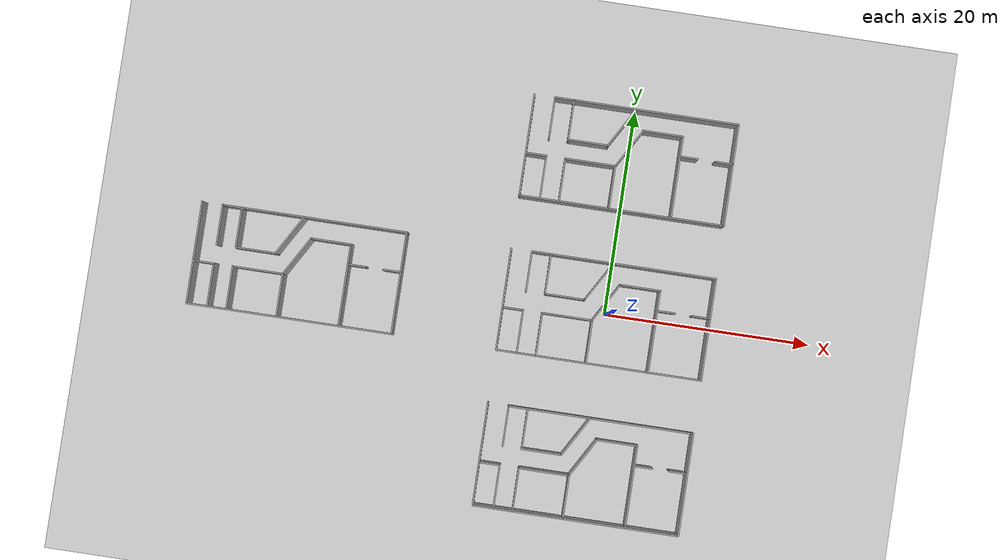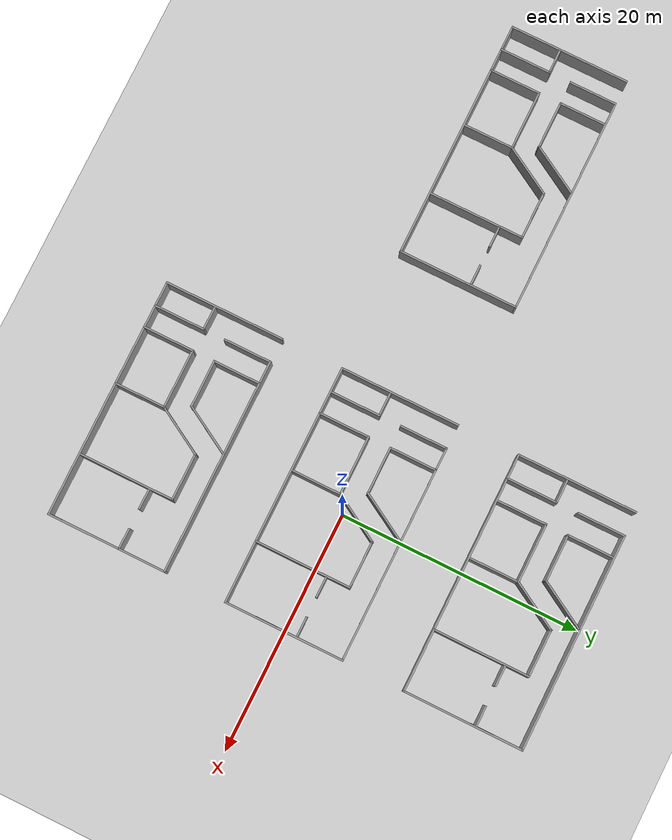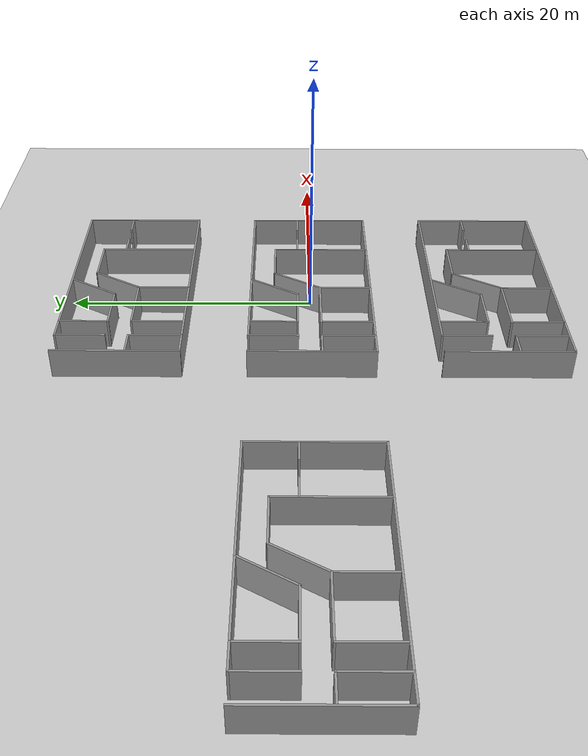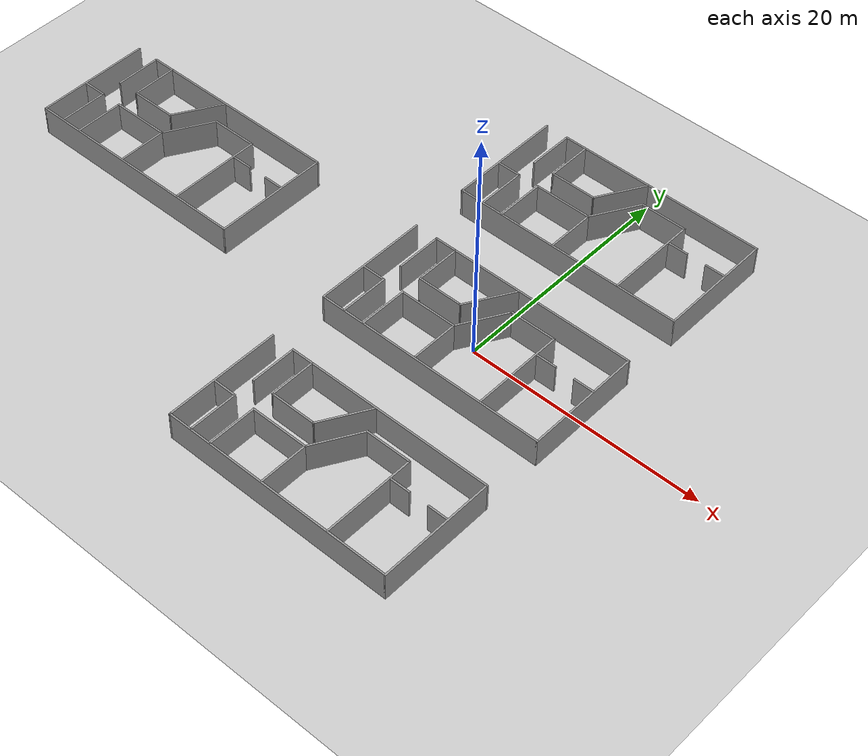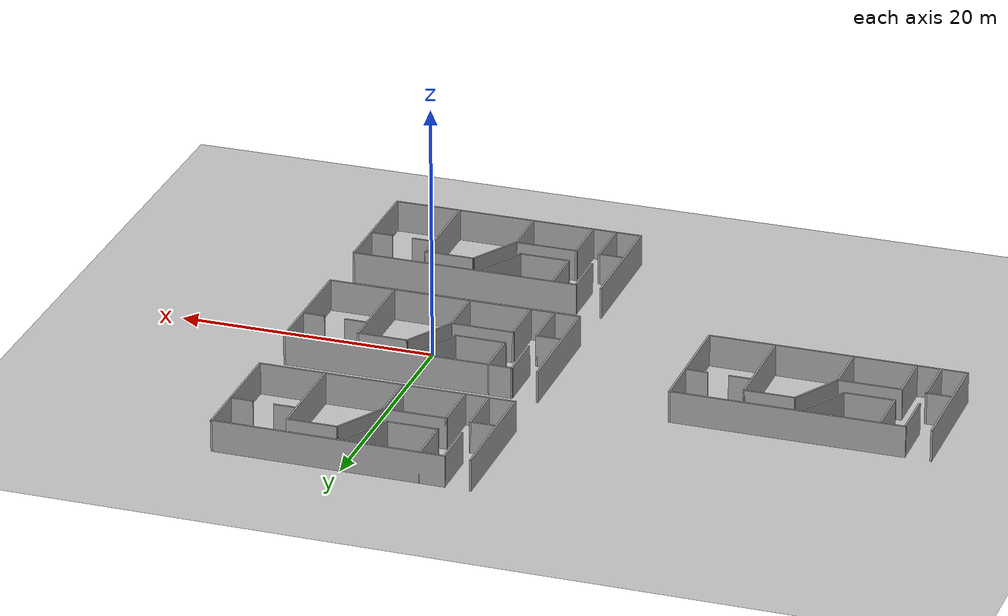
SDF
<sdf version="1.6">
 <world name="default">
  <light name="sun" type="directional">
   <pose>0 0 10 0 -0 0</pose>
   <diffuse>0.8 0.8 0.8 1</diffuse>
   <specular>0.2 0.2 0.2 1</specular>
   <attenuation>
    <range>1000</range>
    <constant>0.9</constant>
    <linear>0.01</linear>
    <quadratic>0.001</quadratic>
   </attenuation>
   <direction>-0.5 0.1 -0.9</direction>
  </light>
  <model name="ground_plane">
   <static>1</static>
   <link name="link">
    <collision name="collision">
     <geometry><plane><normal>0 0 1</normal><size>100 100</size></plane></geometry>
     <surface>
      <contact><collide_bitmask>65535</collide_bitmask></contact>
      <friction><ode><mu>100</mu><mu2>50</mu2></ode></friction>
     </surface>
    </collision>
    <visual name="visual">
     <cast_shadows>0</cast_shadows>
     <geometry><plane><normal>0 0 1</normal><size>100 100</size></plane></geometry>
     <material>
      <script><uri>file://media/materials/scripts/gazebo.material</uri><name>Gazebo/Grey</name></script>
     </material>
    </visual>
   </link>
  </model>
  <gravity>0 0 -9.8</gravity>
  <magnetic_field>6e-06 2.3e-05 -4.2e-05</magnetic_field>
  <atmosphere type="adiabatic"/>
  <physics name="default_physics" default="0" type="ode">
   <max_step_size>0.001</max_step_size>
   <real_time_factor>1</real_time_factor>
   <real_time_update_rate>1000</real_time_update_rate>
  </physics>
  <scene><ambient>0.4 0.4 0.4 1</ambient><background>0.7 0.7 0.7 1</background><shadows>1</shadows></scene>
  <spherical_coordinates>
   <surface_model>EARTH_WGS84</surface_model>
   <latitude_deg>0</latitude_deg>
   <longitude_deg>0</longitude_deg>
   <elevation>0</elevation>
   <heading_deg>0</heading_deg>
  </spherical_coordinates>
  <model name="floor16_1">
   <link name="Wall_38">
    <collision name="Wall_38_Collision">
     <geometry><box><size>10 0.15 2.5</size></box></geometry>
     <pose>0 0 1.25 0 -0 0</pose>
    </collision>
    <visual name="Wall_38_Visual">
     <pose>0 0 1.25 0 -0 0</pose>
     <geometry><box><size>10 0.15 2.5</size></box></geometry>
     <material>
      <script><uri>file://media/materials/scripts/gazebo.material</uri><name>Gazebo/Grey</name></script>
      <ambient>1 1 1 1</ambient>
     </material>
     <meta><layer>0</layer></meta>
    </visual>
    <pose>-9.925 0 0 0 0 -1.5708</pose>
   </link>
   <link name="Wall_39">
    <collision name="Wall_39_Collision">
     <geometry><box><size>20 0.15 2.5</size></box></geometry>
     <pose>0 0 1.25 0 -0 0</pose>
    </collision>
    <visual name="Wall_39_Visual">
     <pose>0 0 1.25 0 -0 0</pose>
     <geometry><box><size>20 0.15 2.5</size></box></geometry>
     <material>
      <script><uri>file://media/materials/scripts/gazebo.material</uri><name>Gazebo/Grey</name></script>
      <ambient>1 1 1 1</ambient>
     </material>
     <meta><layer>0</layer></meta>
    </visual>
    <pose>0 -4.925 0 0 -0 0</pose>
   </link>
   <link name="Wall_40">
    <collision name="Wall_40_Collision">
     <geometry><box><size>10 0.15 2.5</size></box></geometry>
     <pose>0 0 1.25 0 -0 0</pose>
    </collision>
    <visual name="Wall_40_Visual">
     <pose>0 0 1.25 0 -0 0</pose>
     <geometry><box><size>10 0.15 2.5</size></box></geometry>
     <material>
      <script><uri>file://media/materials/scripts/gazebo.material</uri><name>Gazebo/Grey</name></script>
      <ambient>1 1 1 1</ambient>
     </material>
     <meta><layer>0</layer></meta>
    </visual>
    <pose>9.925 0 0 0 -0 1.5708</pose>
   </link>
   <link name="Wall_41">
    <collision name="Wall_41_Collision">
     <geometry><box><size>18 0.15 2.5</size></box></geometry>
     <pose>0 0 1.25 0 -0 0</pose>
    </collision>
    <visual name="Wall_41_Visual">
     <pose>0 0 1.25 0 -0 0</pose>
     <geometry><box><size>18 0.15 2.5</size></box></geometry>
     <material>
      <script><uri>file://media/materials/scripts/gazebo.material</uri><name>Gazebo/Grey</name></script>
      <ambient>1 1 1 1</ambient>
     </material>
     <meta><layer>0</layer></meta>
    </visual>
    <pose>1 4.925 0 0 -0 3.14159</pose>
   </link>
   <link name="Wall_42">
    <collision name="Wall_42_Collision">
     <geometry><box><size>4 0.15 2.5</size></box></geometry>
     <pose>0 0 1.25 0 -0 0</pose>
    </collision>
    <visual name="Wall_42_Visual">
     <pose>0 0 1.25 0 -0 0</pose>
     <geometry><box><size>4 0.15 2.5</size></box></geometry>
     <material>
      <script><uri>file://media/materials/scripts/gazebo.material</uri><name>Gazebo/Grey</name></script>
      <ambient>1 1 1 1</ambient>
     </material>
     <meta><layer>0</layer></meta>
    </visual>
    <pose>-7.925 3 0 0 0 -1.5708</pose>
   </link>
   <link name="Wall_44">
    <collision name="Wall_44_Collision">
     <geometry><box><size>2 0.15 2.5</size></box></geometry>
     <pose>0 0 1.25 0 -0 0</pose>
    </collision>
    <visual name="Wall_44_Visual">
     <pose>0 0 1.25 0 -0 0</pose>
     <geometry><box><size>2 0.15 2.5</size></box></geometry>
     <material>
      <script><uri>file://media/materials/scripts/gazebo.material</uri><name>Gazebo/Grey</name></script>
      <ambient>1 1 1 1</ambient>
     </material>
     <meta><layer>0</layer></meta>
    </visual>
    <pose>-8.85 -0.775 0 0 -0 3.14159</pose>
   </link>
   <link name="Wall_46">
    <collision name="Wall_46_Collision">
     <geometry><box><size>4.25 0.15 2.5</size></box></geometry>
     <pose>0 0 1.25 0 -0 0</pose>
    </collision>
    <visual name="Wall_46_Visual">
     <pose>0 0 1.25 0 -0 0</pose>
     <geometry><box><size>4.25 0.15 2.5</size></box></geometry>
     <material>
      <script><uri>file://media/materials/scripts/gazebo.material</uri><name>Gazebo/Grey</name></script>
      <ambient>1 1 1 1</ambient>
     </material>
     <meta><layer>0</layer></meta>
    </visual>
    <pose>-7.925 -2.825 0 0 0 -1.5708</pose>
   </link>
   <link name="Wall_50">
    <collision name="Wall_50_Collision">
     <geometry><box><size>4.25 0.15 2.5</size></box></geometry>
     <pose>0 0 1.25 0 -0 0</pose>
    </collision>
    <visual name="Wall_50_Visual">
     <pose>0 0 1.25 0 -0 0</pose>
     <geometry><box><size>4.25 0.15 2.5</size></box></geometry>
     <material>
      <script><uri>file://media/materials/scripts/gazebo.material</uri><name>Gazebo/Grey</name></script>
      <ambient>1 1 1 1</ambient>
     </material>
     <meta><layer>0</layer></meta>
    </visual>
    <pose>-6.075 -2.825 0 0 0 -1.5708</pose>
   </link>
   <link name="Wall_52">
    <collision name="Wall_52_Collision">
     <geometry><box><size>4 0.15 2.5</size></box></geometry>
     <pose>0 0 1.25 0 -0 0</pose>
    </collision>
    <visual name="Wall_52_Visual">
     <pose>0 0 1.25 0 -0 0</pose>
     <geometry><box><size>4 0.15 2.5</size></box></geometry>
     <material>
      <script><uri>file://media/materials/scripts/gazebo.material</uri><name>Gazebo/Grey</name></script>
      <ambient>1 1 1 1</ambient>
     </material>
     <meta><layer>0</layer></meta>
    </visual>
    <pose>-4.15 1.075 0 0 -0 0</pose>
   </link>
   <link name="Wall_54">
    <collision name="Wall_54_Collision">
     <geometry><box><size>4 0.15 2.5</size></box></geometry>
     <pose>0 0 1.25 0 -0 0</pose>
    </collision>
    <visual name="Wall_54_Visual">
     <pose>0 0 1.25 0 -0 0</pose>
     <geometry><box><size>4 0.15 2.5</size></box></geometry>
     <material>
      <script><uri>file://media/materials/scripts/gazebo.material</uri><name>Gazebo/Grey</name></script>
      <ambient>1 1 1 1</ambient>
     </material>
     <meta><layer>0</layer></meta>
    </visual>
    <pose>-6.075 3 0 0 -0 1.5708</pose>
   </link>
   <link name="Wall_56">
    <collision name="Wall_56_Collision">
     <geometry><box><size>5 0.15 2.5</size></box></geometry>
     <pose>0 0 1.25 0 -0 0</pose>
    </collision>
    <visual name="Wall_56_Visual">
     <pose>0 0 1.25 0 -0 0</pose>
     <geometry><box><size>5 0.15 2.5</size></box></geometry>
     <material>
      <script><uri>file://media/materials/scripts/gazebo.material</uri><name>Gazebo/Grey</name></script>
      <ambient>1 1 1 1</ambient>
     </material>
     <meta><layer>0</layer></meta>
    </visual>
    <pose>-3.65 -0.775 0 0 -0 0</pose>
   </link>
   <link name="Wall_57">
    <collision name="Wall_57_Collision">
     <geometry><box><size>4.25 0.15 2.5</size></box></geometry>
     <pose>0 0 1.25 0 -0 0</pose>
    </collision>
    <visual name="Wall_57_Visual">
     <pose>0 0 1.25 0 -0 0</pose>
     <geometry><box><size>4.25 0.15 2.5</size></box></geometry>
     <material>
      <script><uri>file://media/materials/scripts/gazebo.material</uri><name>Gazebo/Grey</name></script>
      <ambient>1 1 1 1</ambient>
     </material>
     <meta><layer>0</layer></meta>
    </visual>
    <pose>-1.225 -2.825 0 0 0 -1.5708</pose>
   </link>
   <link name="Wall_59">
    <collision name="Wall_59_Collision">
     <geometry><box><size>4.5 0.15 2.5</size></box></geometry>
     <pose>0 0 1.25 0 -0 0</pose>
    </collision>
    <visual name="Wall_59_Visual">
     <pose>0 0 1.25 0 -0 0</pose>
     <geometry><box><size>4.5 0.15 2.5</size></box></geometry>
     <material>
      <script><uri>file://media/materials/scripts/gazebo.material</uri><name>Gazebo/Grey</name></script>
      <ambient>1 1 1 1</ambient>
     </material>
     <meta><layer>0</layer></meta>
    </visual>
    <pose>-1.1375 2.9586 0 0 -0 1.0472</pose>
   </link>
   <link name="Wall_61">
    <collision name="Wall_61_Collision">
     <geometry><box><size>4.5 0.15 2.5</size></box></geometry>
     <pose>0 0 1.25 0 -0 0</pose>
    </collision>
    <visual name="Wall_61_Visual">
     <pose>0 0 1.25 0 -0 0</pose>
     <geometry><box><size>4.5 0.15 2.5</size></box></geometry>
     <material>
      <script><uri>file://media/materials/scripts/gazebo.material</uri><name>Gazebo/Grey</name></script>
      <ambient>1 1 1 1</ambient>
     </material>
     <meta><layer>0</layer></meta>
    </visual>
    <pose>-0.1375 1.10861 0 0 -0 1.0472</pose>
   </link>
   <link name="Wall_67">
    <collision name="Wall_67_Collision">
     <geometry><box><size>4 0.15 2.5</size></box></geometry>
     <pose>0 0 1.25 0 -0 0</pose>
    </collision>
    <visual name="Wall_67_Visual">
     <pose>0 0 1.25 0 -0 0</pose>
     <geometry><box><size>4 0.15 2.5</size></box></geometry>
     <material>
      <script><uri>file://media/materials/scripts/gazebo.material</uri><name>Gazebo/Grey</name></script>
      <ambient>1 1 1 1</ambient>
     </material>
     <meta><layer>0</layer></meta>
    </visual>
    <pose>2.875 2.99221 0 0 -0 0</pose>
   </link>
   <link name="Wall_68">
    <collision name="Wall_68_Collision">
     <geometry><box><size>8 0.15 2.5</size></box></geometry>
     <pose>0 0 1.25 0 -0 0</pose>
    </collision>
    <visual name="Wall_68_Visual">
     <pose>0 0 1.25 0 -0 0</pose>
     <geometry><box><size>8 0.15 2.5</size></box></geometry>
     <material>
      <script><uri>file://media/materials/scripts/gazebo.material</uri><name>Gazebo/Grey</name></script>
      <ambient>1 1 1 1</ambient>
     </material>
     <meta><layer>0</layer></meta>
    </visual>
    <pose>4.8 -0.93279 0 0 0 -1.5708</pose>
   </link>
   <link name="Wall_74">
    <collision name="Wall_74_Collision">
     <geometry><box><size>1.75 0.15 2.5</size></box></geometry>
     <pose>0 0 1.25 0 -0 0</pose>
    </collision>
    <visual name="Wall_74_Visual">
     <pose>0 0 1.25 0 -0 0</pose>
     <geometry><box><size>1.75 0.15 2.5</size></box></geometry>
     <material>
      <script><uri>file://media/materials/scripts/gazebo.material</uri><name>Gazebo/Grey</name></script>
      <ambient>1 1 1 1</ambient>
     </material>
     <meta><layer>0</layer></meta>
    </visual>
    <pose>5.71015 1.06177 0 0 -0 0</pose>
   </link>
   <link name="Wall_76">
    <collision name="Wall_76_Collision">
     <geometry><box><size>1.75 0.15 2.5</size></box></geometry>
     <pose>0 0 1.25 0 -0 0</pose>
    </collision>
    <visual name="Wall_76_Visual">
     <pose>0 0 1.25 0 -0 0</pose>
     <geometry><box><size>1.75 0.15 2.5</size></box></geometry>
     <material>
      <script><uri>file://media/materials/scripts/gazebo.material</uri><name>Gazebo/Grey</name></script>
      <ambient>1 1 1 1</ambient>
     </material>
     <meta><layer>0</layer></meta>
    </visual>
    <pose>9.05435 1.06177 0 0 -0 0</pose>
   </link>
   <static>1</static>
  </model>
  <model name="floor16_1_clone">
   <pose>0 15 0 0 -0 0</pose>
   <link name="Wall_38">
    <collision name="Wall_38_Collision">
     <geometry><box><size>10 0.15 2.5</size></box></geometry>
     <pose>0 0 1.25 0 -0 0</pose>
    </collision>
    <visual name="Wall_38_Visual">
     <pose>0 0 1.25 0 -0 0</pose>
     <geometry><box><size>10 0.15 2.5</size></box></geometry>
     <material>
      <script><uri>file://media/materials/scripts/gazebo.material</uri><name>Gazebo/Grey</name></script>
      <ambient>1 1 1 1</ambient>
     </material>
     <meta><layer>0</layer></meta>
    </visual>
    <pose>-9.925 0 0 0 0 -1.5708</pose>
   </link>
   <link name="Wall_39">
    <collision name="Wall_39_Collision">
     <geometry><box><size>20 0.15 2.5</size></box></geometry>
     <pose>0 0 1.25 0 -0 0</pose>
    </collision>
    <visual name="Wall_39_Visual">
     <pose>0 0 1.25 0 -0 0</pose>
     <geometry><box><size>20 0.15 2.5</size></box></geometry>
     <material>
      <script><uri>file://media/materials/scripts/gazebo.material</uri><name>Gazebo/Grey</name></script>
      <ambient>1 1 1 1</ambient>
     </material>
     <meta><layer>0</layer></meta>
    </visual>
    <pose>0 -4.925 0 0 -0 0</pose>
   </link>
   <link name="Wall_40">
    <collision name="Wall_40_Collision">
     <geometry><box><size>10 0.15 2.5</size></box></geometry>
     <pose>0 0 1.25 0 -0 0</pose>
    </collision>
    <visual name="Wall_40_Visual">
     <pose>0 0 1.25 0 -0 0</pose>
     <geometry><box><size>10 0.15 2.5</size></box></geometry>
     <material>
      <script><uri>file://media/materials/scripts/gazebo.material</uri><name>Gazebo/Grey</name></script>
      <ambient>1 1 1 1</ambient>
     </material>
     <meta><layer>0</layer></meta>
    </visual>
    <pose>9.925 0 0 0 -0 1.5708</pose>
   </link>
   <link name="Wall_41">
    <collision name="Wall_41_Collision">
     <geometry><box><size>18 0.15 2.5</size></box></geometry>
     <pose>0 0 1.25 0 -0 0</pose>
    </collision>
    <visual name="Wall_41_Visual">
     <pose>0 0 1.25 0 -0 0</pose>
     <geometry><box><size>18 0.15 2.5</size></box></geometry>
     <material>
      <script><uri>file://media/materials/scripts/gazebo.material</uri><name>Gazebo/Grey</name></script>
      <ambient>1 1 1 1</ambient>
     </material>
     <meta><layer>0</layer></meta>
    </visual>
    <pose>1 4.925 0 0 -0 3.14159</pose>
   </link>
   <link name="Wall_42">
    <collision name="Wall_42_Collision">
     <geometry><box><size>4 0.15 2.5</size></box></geometry>
     <pose>0 0 1.25 0 -0 0</pose>
    </collision>
    <visual name="Wall_42_Visual">
     <pose>0 0 1.25 0 -0 0</pose>
     <geometry><box><size>4 0.15 2.5</size></box></geometry>
     <material>
      <script><uri>file://media/materials/scripts/gazebo.material</uri><name>Gazebo/Grey</name></script>
      <ambient>1 1 1 1</ambient>
     </material>
     <meta><layer>0</layer></meta>
    </visual>
    <pose>-7.925 3 0 0 0 -1.5708</pose>
   </link>
   <link name="Wall_44">
    <collision name="Wall_44_Collision">
     <geometry><box><size>2 0.15 2.5</size></box></geometry>
     <pose>0 0 1.25 0 -0 0</pose>
    </collision>
    <visual name="Wall_44_Visual">
     <pose>0 0 1.25 0 -0 0</pose>
     <geometry><box><size>2 0.15 2.5</size></box></geometry>
     <material>
      <script><uri>file://media/materials/scripts/gazebo.material</uri><name>Gazebo/Grey</name></script>
      <ambient>1 1 1 1</ambient>
     </material>
     <meta><layer>0</layer></meta>
    </visual>
    <pose>-8.85 -0.775 0 0 -0 3.14159</pose>
   </link>
   <link name="Wall_46">
    <collision name="Wall_46_Collision">
     <geometry><box><size>4.25 0.15 2.5</size></box></geometry>
     <pose>0 0 1.25 0 -0 0</pose>
    </collision>
    <visual name="Wall_46_Visual">
     <pose>0 0 1.25 0 -0 0</pose>
     <geometry><box><size>4.25 0.15 2.5</size></box></geometry>
     <material>
      <script><uri>file://media/materials/scripts/gazebo.material</uri><name>Gazebo/Grey</name></script>
      <ambient>1 1 1 1</ambient>
     </material>
     <meta><layer>0</layer></meta>
    </visual>
    <pose>-7.925 -2.825 0 0 0 -1.5708</pose>
   </link>
   <link name="Wall_50">
    <collision name="Wall_50_Collision">
     <geometry><box><size>4.25 0.15 2.5</size></box></geometry>
     <pose>0 0 1.25 0 -0 0</pose>
    </collision>
    <visual name="Wall_50_Visual">
     <pose>0 0 1.25 0 -0 0</pose>
     <geometry><box><size>4.25 0.15 2.5</size></box></geometry>
     <material>
      <script><uri>file://media/materials/scripts/gazebo.material</uri><name>Gazebo/Grey</name></script>
      <ambient>1 1 1 1</ambient>
     </material>
     <meta><layer>0</layer></meta>
    </visual>
    <pose>-6.075 -2.825 0 0 0 -1.5708</pose>
   </link>
   <link name="Wall_52">
    <collision name="Wall_52_Collision">
     <geometry><box><size>4 0.15 2.5</size></box></geometry>
     <pose>0 0 1.25 0 -0 0</pose>
    </collision>
    <visual name="Wall_52_Visual">
     <pose>0 0 1.25 0 -0 0</pose>
     <geometry><box><size>4 0.15 2.5</size></box></geometry>
     <material>
      <script><uri>file://media/materials/scripts/gazebo.material</uri><name>Gazebo/Grey</name></script>
      <ambient>1 1 1 1</ambient>
     </material>
     <meta><layer>0</layer></meta>
    </visual>
    <pose>-4.15 1.075 0 0 -0 0</pose>
   </link>
   <link name="Wall_54">
    <collision name="Wall_54_Collision">
     <geometry><box><size>4 0.15 2.5</size></box></geometry>
     <pose>0 0 1.25 0 -0 0</pose>
    </collision>
    <visual name="Wall_54_Visual">
     <pose>0 0 1.25 0 -0 0</pose>
     <geometry><box><size>4 0.15 2.5</size></box></geometry>
     <material>
      <script><uri>file://media/materials/scripts/gazebo.material</uri><name>Gazebo/Grey</name></script>
      <ambient>1 1 1 1</ambient>
     </material>
     <meta><layer>0</layer></meta>
    </visual>
    <pose>-6.075 3 0 0 -0 1.5708</pose>
   </link>
   <link name="Wall_56">
    <collision name="Wall_56_Collision">
     <geometry><box><size>5 0.15 2.5</size></box></geometry>
     <pose>0 0 1.25 0 -0 0</pose>
    </collision>
    <visual name="Wall_56_Visual">
     <pose>0 0 1.25 0 -0 0</pose>
     <geometry><box><size>5 0.15 2.5</size></box></geometry>
     <material>
      <script><uri>file://media/materials/scripts/gazebo.material</uri><name>Gazebo/Grey</name></script>
      <ambient>1 1 1 1</ambient>
     </material>
     <meta><layer>0</layer></meta>
    </visual>
    <pose>-3.65 -0.775 0 0 -0 0</pose>
   </link>
   <link name="Wall_57">
    <collision name="Wall_57_Collision">
     <geometry><box><size>4.25 0.15 2.5</size></box></geometry>
     <pose>0 0 1.25 0 -0 0</pose>
    </collision>
    <visual name="Wall_57_Visual">
     <pose>0 0 1.25 0 -0 0</pose>
     <geometry><box><size>4.25 0.15 2.5</size></box></geometry>
     <material>
      <script><uri>file://media/materials/scripts/gazebo.material</uri><name>Gazebo/Grey</name></script>
      <ambient>1 1 1 1</ambient>
     </material>
     <meta><layer>0</layer></meta>
    </visual>
    <pose>-1.225 -2.825 0 0 0 -1.5708</pose>
   </link>
   <link name="Wall_59">
    <collision name="Wall_59_Collision">
     <geometry><box><size>4.5 0.15 2.5</size></box></geometry>
     <pose>0 0 1.25 0 -0 0</pose>
    </collision>
    <visual name="Wall_59_Visual">
     <pose>0 0 1.25 0 -0 0</pose>
     <geometry><box><size>4.5 0.15 2.5</size></box></geometry>
     <material>
      <script><uri>file://media/materials/scripts/gazebo.material</uri><name>Gazebo/Grey</name></script>
      <ambient>1 1 1 1</ambient>
     </material>
     <meta><layer>0</layer></meta>
    </visual>
    <pose>-1.1375 2.9586 0 0 -0 1.0472</pose>
   </link>
   <link name="Wall_61">
    <collision name="Wall_61_Collision">
     <geometry><box><size>4.5 0.15 2.5</size></box></geometry>
     <pose>0 0 1.25 0 -0 0</pose>
    </collision>
    <visual name="Wall_61_Visual">
     <pose>0 0 1.25 0 -0 0</pose>
     <geometry><box><size>4.5 0.15 2.5</size></box></geometry>
     <material>
      <script><uri>file://media/materials/scripts/gazebo.material</uri><name>Gazebo/Grey</name></script>
      <ambient>1 1 1 1</ambient>
     </material>
     <meta><layer>0</layer></meta>
    </visual>
    <pose>-0.1375 1.10861 0 0 -0 1.0472</pose>
   </link>
   <link name="Wall_67">
    <collision name="Wall_67_Collision">
     <geometry><box><size>4 0.15 2.5</size></box></geometry>
     <pose>0 0 1.25 0 -0 0</pose>
    </collision>
    <visual name="Wall_67_Visual">
     <pose>0 0 1.25 0 -0 0</pose>
     <geometry><box><size>4 0.15 2.5</size></box></geometry>
     <material>
      <script><uri>file://media/materials/scripts/gazebo.material</uri><name>Gazebo/Grey</name></script>
      <ambient>1 1 1 1</ambient>
     </material>
     <meta><layer>0</layer></meta>
    </visual>
    <pose>2.875 2.99221 0 0 -0 0</pose>
   </link>
   <link name="Wall_68">
    <collision name="Wall_68_Collision">
     <geometry><box><size>8 0.15 2.5</size></box></geometry>
     <pose>0 0 1.25 0 -0 0</pose>
    </collision>
    <visual name="Wall_68_Visual">
     <pose>0 0 1.25 0 -0 0</pose>
     <geometry><box><size>8 0.15 2.5</size></box></geometry>
     <material>
      <script><uri>file://media/materials/scripts/gazebo.material</uri><name>Gazebo/Grey</name></script>
      <ambient>1 1 1 1</ambient>
     </material>
     <meta><layer>0</layer></meta>
    </visual>
    <pose>4.8 -0.93279 0 0 0 -1.5708</pose>
   </link>
   <link name="Wall_74">
    <collision name="Wall_74_Collision">
     <geometry><box><size>1.75 0.15 2.5</size></box></geometry>
     <pose>0 0 1.25 0 -0 0</pose>
    </collision>
    <visual name="Wall_74_Visual">
     <pose>0 0 1.25 0 -0 0</pose>
     <geometry><box><size>1.75 0.15 2.5</size></box></geometry>
     <material>
      <script><uri>file://media/materials/scripts/gazebo.material</uri><name>Gazebo/Grey</name></script>
      <ambient>1 1 1 1</ambient>
     </material>
     <meta><layer>0</layer></meta>
    </visual>
    <pose>5.71015 1.06177 0 0 -0 0</pose>
   </link>
   <link name="Wall_76">
    <collision name="Wall_76_Collision">
     <geometry><box><size>1.75 0.15 2.5</size></box></geometry>
     <pose>0 0 1.25 0 -0 0</pose>
    </collision>
    <visual name="Wall_76_Visual">
     <pose>0 0 1.25 0 -0 0</pose>
     <geometry><box><size>1.75 0.15 2.5</size></box></geometry>
     <material>
      <script><uri>file://media/materials/scripts/gazebo.material</uri><name>Gazebo/Grey</name></script>
      <ambient>1 1 1 1</ambient>
     </material>
     <meta><layer>0</layer></meta>
    </visual>
    <pose>9.05435 1.06177 0 0 -0 0</pose>
   </link>
   <static>1</static>
  </model>
  <model name="floor16_1_clone_0">
   <pose>0 -15 0 0 -0 0</pose>
   <link name="Wall_38">
    <collision name="Wall_38_Collision">
     <geometry><box><size>10 0.15 2.5</size></box></geometry>
     <pose>0 0 1.25 0 -0 0</pose>
    </collision>
    <visual name="Wall_38_Visual">
     <pose>0 0 1.25 0 -0 0</pose>
     <geometry><box><size>10 0.15 2.5</size></box></geometry>
     <material>
      <script><uri>file://media/materials/scripts/gazebo.material</uri><name>Gazebo/Grey</name></script>
      <ambient>1 1 1 1</ambient>
     </material>
     <meta><layer>0</layer></meta>
    </visual>
    <pose>-9.925 0 0 0 0 -1.5708</pose>
   </link>
   <link name="Wall_39">
    <collision name="Wall_39_Collision">
     <geometry><box><size>20 0.15 2.5</size></box></geometry>
     <pose>0 0 1.25 0 -0 0</pose>
    </collision>
    <visual name="Wall_39_Visual">
     <pose>0 0 1.25 0 -0 0</pose>
     <geometry><box><size>20 0.15 2.5</size></box></geometry>
     <material>
      <script><uri>file://media/materials/scripts/gazebo.material</uri><name>Gazebo/Grey</name></script>
      <ambient>1 1 1 1</ambient>
     </material>
     <meta><layer>0</layer></meta>
    </visual>
    <pose>0 -4.925 0 0 -0 0</pose>
   </link>
   <link name="Wall_40">
    <collision name="Wall_40_Collision">
     <geometry><box><size>10 0.15 2.5</size></box></geometry>
     <pose>0 0 1.25 0 -0 0</pose>
    </collision>
    <visual name="Wall_40_Visual">
     <pose>0 0 1.25 0 -0 0</pose>
     <geometry><box><size>10 0.15 2.5</size></box></geometry>
     <material>
      <script><uri>file://media/materials/scripts/gazebo.material</uri><name>Gazebo/Grey</name></script>
      <ambient>1 1 1 1</ambient>
     </material>
     <meta><layer>0</layer></meta>
    </visual>
    <pose>9.925 0 0 0 -0 1.5708</pose>
   </link>
   <link name="Wall_41">
    <collision name="Wall_41_Collision">
     <geometry><box><size>18 0.15 2.5</size></box></geometry>
     <pose>0 0 1.25 0 -0 0</pose>
    </collision>
    <visual name="Wall_41_Visual">
     <pose>0 0 1.25 0 -0 0</pose>
     <geometry><box><size>18 0.15 2.5</size></box></geometry>
     <material>
      <script><uri>file://media/materials/scripts/gazebo.material</uri><name>Gazebo/Grey</name></script>
      <ambient>1 1 1 1</ambient>
     </material>
     <meta><layer>0</layer></meta>
    </visual>
    <pose>1 4.925 0 0 -0 3.14159</pose>
   </link>
   <link name="Wall_42">
    <collision name="Wall_42_Collision">
     <geometry><box><size>4 0.15 2.5</size></box></geometry>
     <pose>0 0 1.25 0 -0 0</pose>
    </collision>
    <visual name="Wall_42_Visual">
     <pose>0 0 1.25 0 -0 0</pose>
     <geometry><box><size>4 0.15 2.5</size></box></geometry>
     <material>
      <script><uri>file://media/materials/scripts/gazebo.material</uri><name>Gazebo/Grey</name></script>
      <ambient>1 1 1 1</ambient>
     </material>
     <meta><layer>0</layer></meta>
    </visual>
    <pose>-7.925 3 0 0 0 -1.5708</pose>
   </link>
   <link name="Wall_44">
    <collision name="Wall_44_Collision">
     <geometry><box><size>2 0.15 2.5</size></box></geometry>
     <pose>0 0 1.25 0 -0 0</pose>
    </collision>
    <visual name="Wall_44_Visual">
     <pose>0 0 1.25 0 -0 0</pose>
     <geometry><box><size>2 0.15 2.5</size></box></geometry>
     <material>
      <script><uri>file://media/materials/scripts/gazebo.material</uri><name>Gazebo/Grey</name></script>
      <ambient>1 1 1 1</ambient>
     </material>
     <meta><layer>0</layer></meta>
    </visual>
    <pose>-8.85 -0.775 0 0 -0 3.14159</pose>
   </link>
   <link name="Wall_46">
    <collision name="Wall_46_Collision">
     <geometry><box><size>4.25 0.15 2.5</size></box></geometry>
     <pose>0 0 1.25 0 -0 0</pose>
    </collision>
    <visual name="Wall_46_Visual">
     <pose>0 0 1.25 0 -0 0</pose>
     <geometry><box><size>4.25 0.15 2.5</size></box></geometry>
     <material>
      <script><uri>file://media/materials/scripts/gazebo.material</uri><name>Gazebo/Grey</name></script>
      <ambient>1 1 1 1</ambient>
     </material>
     <meta><layer>0</layer></meta>
    </visual>
    <pose>-7.925 -2.825 0 0 0 -1.5708</pose>
   </link>
   <link name="Wall_50">
    <collision name="Wall_50_Collision">
     <geometry><box><size>4.25 0.15 2.5</size></box></geometry>
     <pose>0 0 1.25 0 -0 0</pose>
    </collision>
    <visual name="Wall_50_Visual">
     <pose>0 0 1.25 0 -0 0</pose>
     <geometry><box><size>4.25 0.15 2.5</size></box></geometry>
     <material>
      <script><uri>file://media/materials/scripts/gazebo.material</uri><name>Gazebo/Grey</name></script>
      <ambient>1 1 1 1</ambient>
     </material>
     <meta><layer>0</layer></meta>
    </visual>
    <pose>-6.075 -2.825 0 0 0 -1.5708</pose>
   </link>
   <link name="Wall_52">
    <collision name="Wall_52_Collision">
     <geometry><box><size>4 0.15 2.5</size></box></geometry>
     <pose>0 0 1.25 0 -0 0</pose>
    </collision>
    <visual name="Wall_52_Visual">
     <pose>0 0 1.25 0 -0 0</pose>
     <geometry><box><size>4 0.15 2.5</size></box></geometry>
     <material>
      <script><uri>file://media/materials/scripts/gazebo.material</uri><name>Gazebo/Grey</name></script>
      <ambient>1 1 1 1</ambient>
     </material>
     <meta><layer>0</layer></meta>
    </visual>
    <pose>-4.15 1.075 0 0 -0 0</pose>
   </link>
   <link name="Wall_54">
    <collision name="Wall_54_Collision">
     <geometry><box><size>4 0.15 2.5</size></box></geometry>
     <pose>0 0 1.25 0 -0 0</pose>
    </collision>
    <visual name="Wall_54_Visual">
     <pose>0 0 1.25 0 -0 0</pose>
     <geometry><box><size>4 0.15 2.5</size></box></geometry>
     <material>
      <script><uri>file://media/materials/scripts/gazebo.material</uri><name>Gazebo/Grey</name></script>
      <ambient>1 1 1 1</ambient>
     </material>
     <meta><layer>0</layer></meta>
    </visual>
    <pose>-6.075 3 0 0 -0 1.5708</pose>
   </link>
   <link name="Wall_56">
    <collision name="Wall_56_Collision">
     <geometry><box><size>5 0.15 2.5</size></box></geometry>
     <pose>0 0 1.25 0 -0 0</pose>
    </collision>
    <visual name="Wall_56_Visual">
     <pose>0 0 1.25 0 -0 0</pose>
     <geometry><box><size>5 0.15 2.5</size></box></geometry>
     <material>
      <script><uri>file://media/materials/scripts/gazebo.material</uri><name>Gazebo/Grey</name></script>
      <ambient>1 1 1 1</ambient>
     </material>
     <meta><layer>0</layer></meta>
    </visual>
    <pose>-3.65 -0.775 0 0 -0 0</pose>
   </link>
   <link name="Wall_57">
    <collision name="Wall_57_Collision">
     <geometry><box><size>4.25 0.15 2.5</size></box></geometry>
     <pose>0 0 1.25 0 -0 0</pose>
    </collision>
    <visual name="Wall_57_Visual">
     <pose>0 0 1.25 0 -0 0</pose>
     <geometry><box><size>4.25 0.15 2.5</size></box></geometry>
     <material>
      <script><uri>file://media/materials/scripts/gazebo.material</uri><name>Gazebo/Grey</name></script>
      <ambient>1 1 1 1</ambient>
     </material>
     <meta><layer>0</layer></meta>
    </visual>
    <pose>-1.225 -2.825 0 0 0 -1.5708</pose>
   </link>
   <link name="Wall_59">
    <collision name="Wall_59_Collision">
     <geometry><box><size>4.5 0.15 2.5</size></box></geometry>
     <pose>0 0 1.25 0 -0 0</pose>
    </collision>
    <visual name="Wall_59_Visual">
     <pose>0 0 1.25 0 -0 0</pose>
     <geometry><box><size>4.5 0.15 2.5</size></box></geometry>
     <material>
      <script><uri>file://media/materials/scripts/gazebo.material</uri><name>Gazebo/Grey</name></script>
      <ambient>1 1 1 1</ambient>
     </material>
     <meta><layer>0</layer></meta>
    </visual>
    <pose>-1.1375 2.9586 0 0 -0 1.0472</pose>
   </link>
   <link name="Wall_61">
    <collision name="Wall_61_Collision">
     <geometry><box><size>4.5 0.15 2.5</size></box></geometry>
     <pose>0 0 1.25 0 -0 0</pose>
    </collision>
    <visual name="Wall_61_Visual">
     <pose>0 0 1.25 0 -0 0</pose>
     <geometry><box><size>4.5 0.15 2.5</size></box></geometry>
     <material>
      <script><uri>file://media/materials/scripts/gazebo.material</uri><name>Gazebo/Grey</name></script>
      <ambient>1 1 1 1</ambient>
     </material>
     <meta><layer>0</layer></meta>
    </visual>
    <pose>-0.1375 1.10861 0 0 -0 1.0472</pose>
   </link>
   <link name="Wall_67">
    <collision name="Wall_67_Collision">
     <geometry><box><size>4 0.15 2.5</size></box></geometry>
     <pose>0 0 1.25 0 -0 0</pose>
    </collision>
    <visual name="Wall_67_Visual">
     <pose>0 0 1.25 0 -0 0</pose>
     <geometry><box><size>4 0.15 2.5</size></box></geometry>
     <material>
      <script><uri>file://media/materials/scripts/gazebo.material</uri><name>Gazebo/Grey</name></script>
      <ambient>1 1 1 1</ambient>
     </material>
     <meta><layer>0</layer></meta>
    </visual>
    <pose>2.875 2.99221 0 0 -0 0</pose>
   </link>
   <link name="Wall_68">
    <collision name="Wall_68_Collision">
     <geometry><box><size>8 0.15 2.5</size></box></geometry>
     <pose>0 0 1.25 0 -0 0</pose>
    </collision>
    <visual name="Wall_68_Visual">
     <pose>0 0 1.25 0 -0 0</pose>
     <geometry><box><size>8 0.15 2.5</size></box></geometry>
     <material>
      <script><uri>file://media/materials/scripts/gazebo.material</uri><name>Gazebo/Grey</name></script>
      <ambient>1 1 1 1</ambient>
     </material>
     <meta><layer>0</layer></meta>
    </visual>
    <pose>4.8 -0.93279 0 0 0 -1.5708</pose>
   </link>
   <link name="Wall_74">
    <collision name="Wall_74_Collision">
     <geometry><box><size>1.75 0.15 2.5</size></box></geometry>
     <pose>0 0 1.25 0 -0 0</pose>
    </collision>
    <visual name="Wall_74_Visual">
     <pose>0 0 1.25 0 -0 0</pose>
     <geometry><box><size>1.75 0.15 2.5</size></box></geometry>
     <material>
      <script><uri>file://media/materials/scripts/gazebo.material</uri><name>Gazebo/Grey</name></script>
      <ambient>1 1 1 1</ambient>
     </material>
     <meta><layer>0</layer></meta>
    </visual>
    <pose>5.71015 1.06177 0 0 -0 0</pose>
   </link>
   <link name="Wall_76">
    <collision name="Wall_76_Collision">
     <geometry><box><size>1.75 0.15 2.5</size></box></geometry>
     <pose>0 0 1.25 0 -0 0</pose>
    </collision>
    <visual name="Wall_76_Visual">
     <pose>0 0 1.25 0 -0 0</pose>
     <geometry><box><size>1.75 0.15 2.5</size></box></geometry>
     <material>
      <script><uri>file://media/materials/scripts/gazebo.material</uri><name>Gazebo/Grey</name></script>
      <ambient>1 1 1 1</ambient>
     </material>
     <meta><layer>0</layer></meta>
    </visual>
    <pose>9.05435 1.06177 0 0 -0 0</pose>
   </link>
   <static>1</static>
  </model>
  <model name="floor16_1_clone_1">
   <pose>-30 0 0 0 -0 0</pose>
   <link name="Wall_38">
    <collision name="Wall_38_Collision">
     <geometry><box><size>10 0.15 2.5</size></box></geometry>
     <pose>0 0 1.25 0 -0 0</pose>
    </collision>
    <visual name="Wall_38_Visual">
     <pose>0 0 1.25 0 -0 0</pose>
     <geometry><box><size>10 0.15 2.5</size></box></geometry>
     <material>
      <script><uri>file://media/materials/scripts/gazebo.material</uri><name>Gazebo/Grey</name></script>
      <ambient>1 1 1 1</ambient>
     </material>
     <meta><layer>0</layer></meta>
    </visual>
    <pose>-9.925 0 0 0 0 -1.5708</pose>
   </link>
   <link name="Wall_39">
    <collision name="Wall_39_Collision">
     <geometry><box><size>20 0.15 2.5</size></box></geometry>
     <pose>0 0 1.25 0 -0 0</pose>
    </collision>
    <visual name="Wall_39_Visual">
     <pose>0 0 1.25 0 -0 0</pose>
     <geometry><box><size>20 0.15 2.5</size></box></geometry>
     <material>
      <script><uri>file://media/materials/scripts/gazebo.material</uri><name>Gazebo/Grey</name></script>
      <ambient>1 1 1 1</ambient>
     </material>
     <meta><layer>0</layer></meta>
    </visual>
    <pose>0 -4.925 0 0 -0 0</pose>
   </link>
   <link name="Wall_40">
    <collision name="Wall_40_Collision">
     <geometry><box><size>10 0.15 2.5</size></box></geometry>
     <pose>0 0 1.25 0 -0 0</pose>
    </collision>
    <visual name="Wall_40_Visual">
     <pose>0 0 1.25 0 -0 0</pose>
     <geometry><box><size>10 0.15 2.5</size></box></geometry>
     <material>
      <script><uri>file://media/materials/scripts/gazebo.material</uri><name>Gazebo/Grey</name></script>
      <ambient>1 1 1 1</ambient>
     </material>
     <meta><layer>0</layer></meta>
    </visual>
    <pose>9.925 0 0 0 -0 1.5708</pose>
   </link>
   <link name="Wall_41">
    <collision name="Wall_41_Collision">
     <geometry><box><size>18 0.15 2.5</size></box></geometry>
     <pose>0 0 1.25 0 -0 0</pose>
    </collision>
    <visual name="Wall_41_Visual">
     <pose>0 0 1.25 0 -0 0</pose>
     <geometry><box><size>18 0.15 2.5</size></box></geometry>
     <material>
      <script><uri>file://media/materials/scripts/gazebo.material</uri><name>Gazebo/Grey</name></script>
      <ambient>1 1 1 1</ambient>
     </material>
     <meta><layer>0</layer></meta>
    </visual>
    <pose>1 4.925 0 0 -0 3.14159</pose>
   </link>
   <link name="Wall_42">
    <collision name="Wall_42_Collision">
     <geometry><box><size>4 0.15 2.5</size></box></geometry>
     <pose>0 0 1.25 0 -0 0</pose>
    </collision>
    <visual name="Wall_42_Visual">
     <pose>0 0 1.25 0 -0 0</pose>
     <geometry><box><size>4 0.15 2.5</size></box></geometry>
     <material>
      <script><uri>file://media/materials/scripts/gazebo.material</uri><name>Gazebo/Grey</name></script>
      <ambient>1 1 1 1</ambient>
     </material>
     <meta><layer>0</layer></meta>
    </visual>
    <pose>-7.925 3 0 0 0 -1.5708</pose>
   </link>
   <link name="Wall_44">
    <collision name="Wall_44_Collision">
     <geometry><box><size>2 0.15 2.5</size></box></geometry>
     <pose>0 0 1.25 0 -0 0</pose>
    </collision>
    <visual name="Wall_44_Visual">
     <pose>0 0 1.25 0 -0 0</pose>
     <geometry><box><size>2 0.15 2.5</size></box></geometry>
     <material>
      <script><uri>file://media/materials/scripts/gazebo.material</uri><name>Gazebo/Grey</name></script>
      <ambient>1 1 1 1</ambient>
     </material>
     <meta><layer>0</layer></meta>
    </visual>
    <pose>-8.85 -0.775 0 0 -0 3.14159</pose>
   </link>
   <link name="Wall_46">
    <collision name="Wall_46_Collision">
     <geometry><box><size>4.25 0.15 2.5</size></box></geometry>
     <pose>0 0 1.25 0 -0 0</pose>
    </collision>
    <visual name="Wall_46_Visual">
     <pose>0 0 1.25 0 -0 0</pose>
     <geometry><box><size>4.25 0.15 2.5</size></box></geometry>
     <material>
      <script><uri>file://media/materials/scripts/gazebo.material</uri><name>Gazebo/Grey</name></script>
      <ambient>1 1 1 1</ambient>
     </material>
     <meta><layer>0</layer></meta>
    </visual>
    <pose>-7.925 -2.825 0 0 0 -1.5708</pose>
   </link>
   <link name="Wall_50">
    <collision name="Wall_50_Collision">
     <geometry><box><size>4.25 0.15 2.5</size></box></geometry>
     <pose>0 0 1.25 0 -0 0</pose>
    </collision>
    <visual name="Wall_50_Visual">
     <pose>0 0 1.25 0 -0 0</pose>
     <geometry><box><size>4.25 0.15 2.5</size></box></geometry>
     <material>
      <script><uri>file://media/materials/scripts/gazebo.material</uri><name>Gazebo/Grey</name></script>
      <ambient>1 1 1 1</ambient>
     </material>
     <meta><layer>0</layer></meta>
    </visual>
    <pose>-6.075 -2.825 0 0 0 -1.5708</pose>
   </link>
   <link name="Wall_52">
    <collision name="Wall_52_Collision">
     <geometry><box><size>4 0.15 2.5</size></box></geometry>
     <pose>0 0 1.25 0 -0 0</pose>
    </collision>
    <visual name="Wall_52_Visual">
     <pose>0 0 1.25 0 -0 0</pose>
     <geometry><box><size>4 0.15 2.5</size></box></geometry>
     <material>
      <script><uri>file://media/materials/scripts/gazebo.material</uri><name>Gazebo/Grey</name></script>
      <ambient>1 1 1 1</ambient>
     </material>
     <meta><layer>0</layer></meta>
    </visual>
    <pose>-4.15 1.075 0 0 -0 0</pose>
   </link>
   <link name="Wall_54">
    <collision name="Wall_54_Collision">
     <geometry><box><size>4 0.15 2.5</size></box></geometry>
     <pose>0 0 1.25 0 -0 0</pose>
    </collision>
    <visual name="Wall_54_Visual">
     <pose>0 0 1.25 0 -0 0</pose>
     <geometry><box><size>4 0.15 2.5</size></box></geometry>
     <material>
      <script><uri>file://media/materials/scripts/gazebo.material</uri><name>Gazebo/Grey</name></script>
      <ambient>1 1 1 1</ambient>
     </material>
     <meta><layer>0</layer></meta>
    </visual>
    <pose>-6.075 3 0 0 -0 1.5708</pose>
   </link>
   <link name="Wall_56">
    <collision name="Wall_56_Collision">
     <geometry><box><size>5 0.15 2.5</size></box></geometry>
     <pose>0 0 1.25 0 -0 0</pose>
    </collision>
    <visual name="Wall_56_Visual">
     <pose>0 0 1.25 0 -0 0</pose>
     <geometry><box><size>5 0.15 2.5</size></box></geometry>
     <material>
      <script><uri>file://media/materials/scripts/gazebo.material</uri><name>Gazebo/Grey</name></script>
      <ambient>1 1 1 1</ambient>
     </material>
     <meta><layer>0</layer></meta>
    </visual>
    <pose>-3.65 -0.775 0 0 -0 0</pose>
   </link>
   <link name="Wall_57">
    <collision name="Wall_57_Collision">
     <geometry><box><size>4.25 0.15 2.5</size></box></geometry>
     <pose>0 0 1.25 0 -0 0</pose>
    </collision>
    <visual name="Wall_57_Visual">
     <pose>0 0 1.25 0 -0 0</pose>
     <geometry><box><size>4.25 0.15 2.5</size></box></geometry>
     <material>
      <script><uri>file://media/materials/scripts/gazebo.material</uri><name>Gazebo/Grey</name></script>
      <ambient>1 1 1 1</ambient>
     </material>
     <meta><layer>0</layer></meta>
    </visual>
    <pose>-1.225 -2.825 0 0 0 -1.5708</pose>
   </link>
   <link name="Wall_59">
    <collision name="Wall_59_Collision">
     <geometry><box><size>4.5 0.15 2.5</size></box></geometry>
     <pose>0 0 1.25 0 -0 0</pose>
    </collision>
    <visual name="Wall_59_Visual">
     <pose>0 0 1.25 0 -0 0</pose>
     <geometry><box><size>4.5 0.15 2.5</size></box></geometry>
     <material>
      <script><uri>file://media/materials/scripts/gazebo.material</uri><name>Gazebo/Grey</name></script>
      <ambient>1 1 1 1</ambient>
     </material>
     <meta><layer>0</layer></meta>
    </visual>
    <pose>-1.1375 2.9586 0 0 -0 1.0472</pose>
   </link>
   <link name="Wall_61">
    <collision name="Wall_61_Collision">
     <geometry><box><size>4.5 0.15 2.5</size></box></geometry>
     <pose>0 0 1.25 0 -0 0</pose>
    </collision>
    <visual name="Wall_61_Visual">
     <pose>0 0 1.25 0 -0 0</pose>
     <geometry><box><size>4.5 0.15 2.5</size></box></geometry>
     <material>
      <script><uri>file://media/materials/scripts/gazebo.material</uri><name>Gazebo/Grey</name></script>
      <ambient>1 1 1 1</ambient>
     </material>
     <meta><layer>0</layer></meta>
    </visual>
    <pose>-0.1375 1.10861 0 0 -0 1.0472</pose>
   </link>
   <link name="Wall_67">
    <collision name="Wall_67_Collision">
     <geometry><box><size>4 0.15 2.5</size></box></geometry>
     <pose>0 0 1.25 0 -0 0</pose>
    </collision>
    <visual name="Wall_67_Visual">
     <pose>0 0 1.25 0 -0 0</pose>
     <geometry><box><size>4 0.15 2.5</size></box></geometry>
     <material>
      <script><uri>file://media/materials/scripts/gazebo.material</uri><name>Gazebo/Grey</name></script>
      <ambient>1 1 1 1</ambient>
     </material>
     <meta><layer>0</layer></meta>
    </visual>
    <pose>2.875 2.99221 0 0 -0 0</pose>
   </link>
   <link name="Wall_68">
    <collision name="Wall_68_Collision">
     <geometry><box><size>8 0.15 2.5</size></box></geometry>
     <pose>0 0 1.25 0 -0 0</pose>
    </collision>
    <visual name="Wall_68_Visual">
     <pose>0 0 1.25 0 -0 0</pose>
     <geometry><box><size>8 0.15 2.5</size></box></geometry>
     <material>
      <script><uri>file://media/materials/scripts/gazebo.material</uri><name>Gazebo/Grey</name></script>
      <ambient>1 1 1 1</ambient>
     </material>
     <meta><layer>0</layer></meta>
    </visual>
    <pose>4.8 -0.93279 0 0 0 -1.5708</pose>
   </link>
   <link name="Wall_74">
    <collision name="Wall_74_Collision">
     <geometry><box><size>1.75 0.15 2.5</size></box></geometry>
     <pose>0 0 1.25 0 -0 0</pose>
    </collision>
    <visual name="Wall_74_Visual">
     <pose>0 0 1.25 0 -0 0</pose>
     <geometry><box><size>1.75 0.15 2.5</size></box></geometry>
     <material>
      <script><uri>file://media/materials/scripts/gazebo.material</uri><name>Gazebo/Grey</name></script>
      <ambient>1 1 1 1</ambient>
     </material>
     <meta><layer>0</layer></meta>
    </visual>
    <pose>5.71015 1.06177 0 0 -0 0</pose>
   </link>
   <link name="Wall_76">
    <collision name="Wall_76_Collision">
     <geometry><box><size>1.75 0.15 2.5</size></box></geometry>
     <pose>0 0 1.25 0 -0 0</pose>
    </collision>
    <visual name="Wall_76_Visual">
     <pose>0 0 1.25 0 -0 0</pose>
     <geometry><box><size>1.75 0.15 2.5</size></box></geometry>
     <material>
      <script><uri>file://media/materials/scripts/gazebo.material</uri><name>Gazebo/Grey</name></script>
      <ambient>1 1 1 1</ambient>
     </material>
     <meta><layer>0</layer></meta>
    </visual>
    <pose>9.05435 1.06177 0 0 -0 0</pose>
   </link>
   <static>1</static>
  </model>
 </world>
</sdf>
